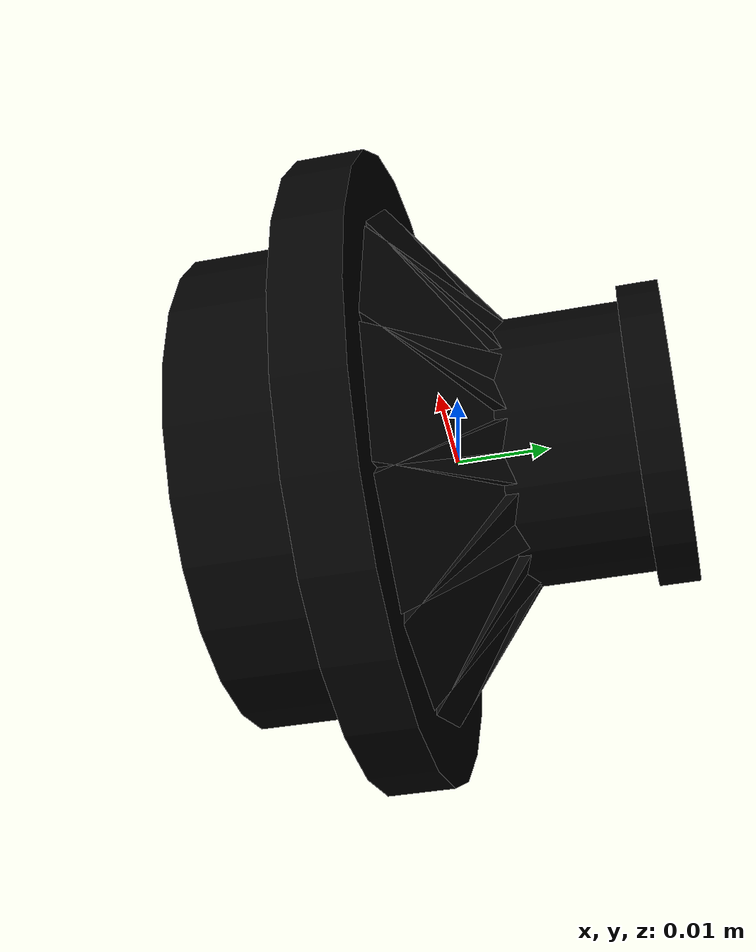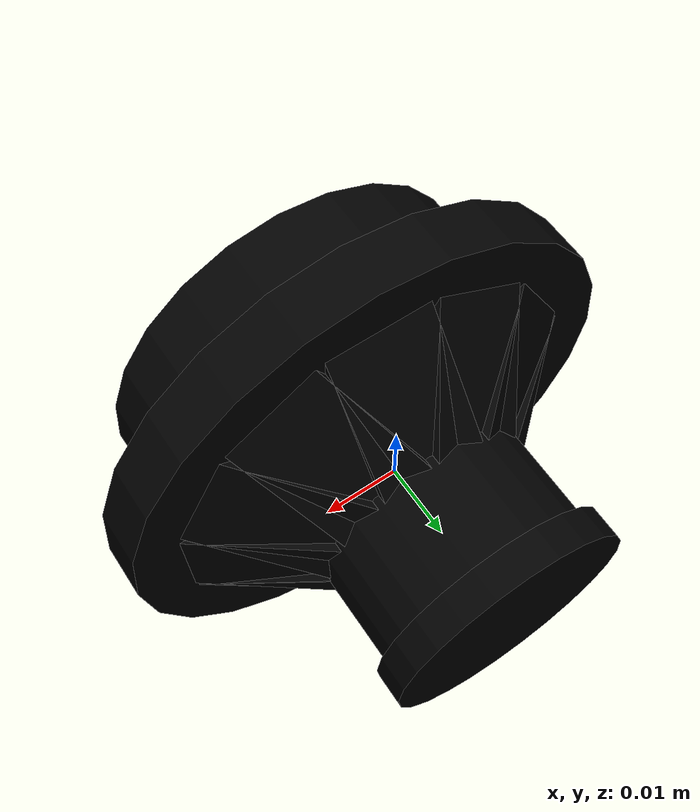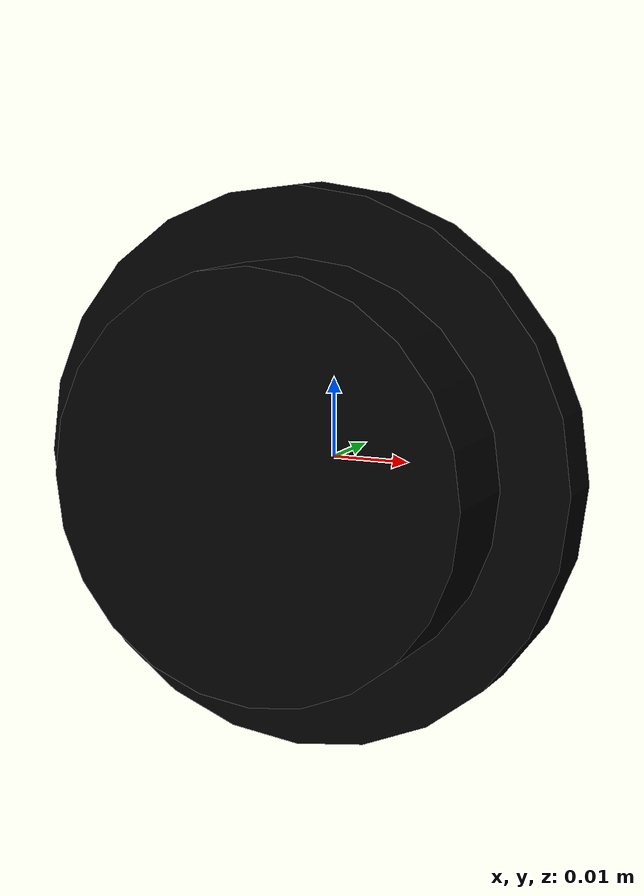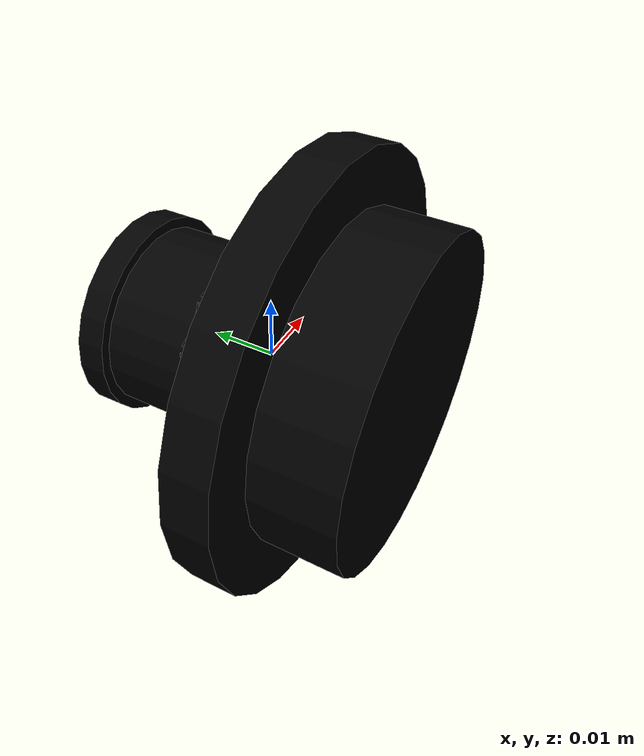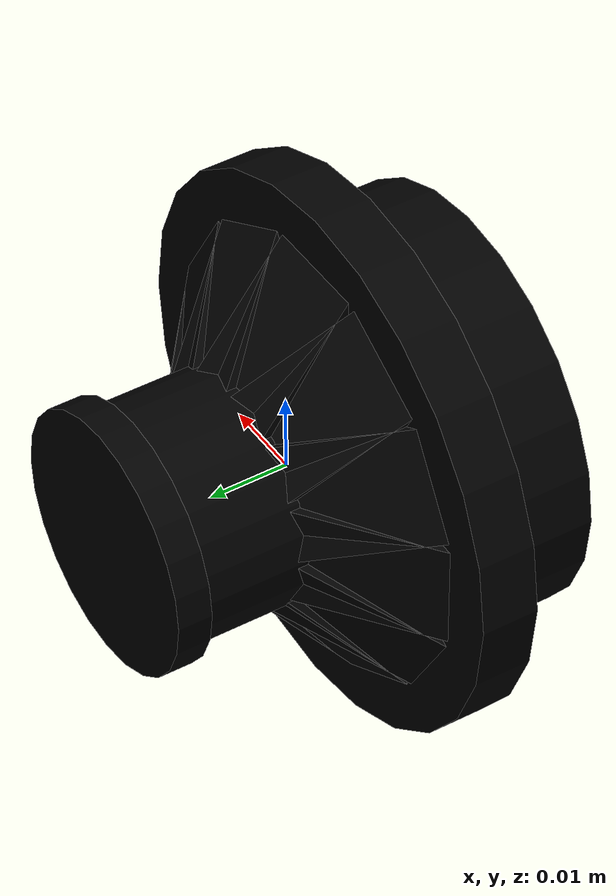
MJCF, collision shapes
<?xml version="1.0" ?>
<mujoco model="model">
    <compiler angle="radian"/>
    <asset>
        <mesh file="visuals/CabinetHandle035.obj" name="mesh"/>
        <texture file="visuals/T_BC001.png" name="tex" type="2d"/>
        <material name="mat" rgba="1 1 1 1.0" texture="tex" shininess="0.05" specular="1"/>
    </asset>
    <default>
        <default class="visual">
            <geom conaffinity="0" contype="0" group="1" type="mesh"/>
        </default>
        <default class="collision">
            <geom group="0" rgba="0 0 0 0"/>
        </default>
        <default class="spawn">
            <geom group="0" rgba="0 0 0 0" contype="0" conaffinity="0"/>
            <site group="0" rgba="0 0 0 0"/>
        </default>
    </default>
    <worldbody>
        <body>
            <body name="object">
                <geom mesh="mesh" type="mesh" solimp="0.998 0.998 0.001" solref="0.001 1" density="100" friction="0.95 0.3 0.1" class="visual" material="mat"/>
                <geom class="collision" type="cylinder" pos="0.0 -0.007462132256478071 5.633752908629219e-10" size="0.03455479070544243 0.003561858320608735" quat="0.7071068286895752 0.7071067690849304 0.0 0.0"/>
                <geom class="collision" type="cylinder" pos="0.0 0.021816875785589218 -1.6471284336461167e-09" size="0.016213493421673775 0.002159304916858673" quat="0.7071068286895752 0.7071067690849304 0.0 0.0" name="handle_connector"/>
                <geom class="collision" type="cylinder" pos="0.0 -0.017525188624858856 1.323114950935178e-09" size="0.02604939602315426 0.0065163904801011086" quat="0.7071068286895752 0.7071067690849304 0.0 0.0"/>
                <geom class="collision" type="cylinder" pos="0.0 0.012328596785664558 -9.307831172478132e-10" size="0.01458699069917202 0.007982098497450352" quat="0.7071068286895752 0.7071067690849304 0.0 0.0"/>
                <geom class="collision" type="box" pos="0.0 0.00020826468244194984 0.018328353762626648" size="0.006832967046648264 0.010165456682443619 0.002418133895844221" quat="0.8962873816490173 -0.4434736669063568 -0.0 0.0"/>
                <geom class="collision" type="box" pos="-2.7675044478314703e-09 0.00020826468244194984 -0.018328353762626648" size="0.006832967046648264 0.010165456682443619 0.002418133895844221" quat="6.766781268652267e-08 -3.348133503777717e-08 -0.8962873816490173 -0.4434736967086792"/>
                <geom class="collision" type="box" pos="0.018328353762626648 0.00020826468244194984 8.958203068232251e-09" size="0.006832967046648264 0.010165456682443619 0.002418133895844221" quat="0.6337710618972778 -0.3135833144187927 0.633770763874054 0.3135831654071808"/>
                <geom class="collision" type="box" pos="-0.018328353762626648 0.00020826468244194984 1.3837522239157352e-09" size="0.006832967046648264 0.010165456682443619 0.002418133895844221" quat="0.6337709426879883 -0.31358325481414795 -0.6337708830833435 -0.31358322501182556"/>
                <geom class="collision" type="box" pos="-0.01587281934916973 0.00020826654508709908 0.009164177812635899" size="0.006832967046648264 0.010165457613766193 0.002418133895844221" quat="0.776207685470581 -0.38405951857566833 -0.4481436610221863 -0.2217368483543396"/>
                <geom class="collision" type="box" pos="0.01587282493710518 0.00020826654508709908 -0.009164167568087578" size="0.006832967046648264 0.010165456682443619 0.002418133895844221" quat="0.44814395904541016 -0.22173696756362915 0.7762075066566467 0.38405942916870117"/>
                <geom class="collision" type="box" pos="0.00916418805718422 0.00020826654508709908 -0.015872813761234283" size="0.006832967046648264 0.010165456682443619 0.002418133895844221" quat="0.2319764792919159 -0.1147795245051384 0.8657470941543579 0.42836257815361023"/>
                <geom class="collision" type="box" pos="-0.009164176881313324 0.00020826654508709908 0.01587281934916973" size="0.006832967046648264 0.010165456682443619 0.002418133895844221" quat="0.8657471537590027 -0.4283626973628998 -0.2319762259721756 -0.11477942764759064"/>
                <geom class="collision" type="box" pos="0.009164177812635899 0.00020826654508709908 0.01587281934916973" size="0.006832967046648264 0.010165456682443619 0.002418133895844221" quat="0.8657470941543579 -0.42836275696754456 0.23197630047798157 0.11477947980165482"/>
                <geom class="collision" type="box" pos="-0.009164165705442429 0.00020826654508709908 -0.01587282493710518" size="0.006832967046648264 0.010165456682443619 0.002418133895844221" quat="0.2319759577512741 -0.11477930098772049 -0.8657472133636475 -0.42836275696754456"/>
                <geom class="collision" type="box" pos="-0.015872813761234283 0.00020826654508709908 -0.009164188988506794" size="0.006832967046648264 0.010165456682443619 0.002418133895844221" quat="0.4481433629989624 -0.22173655033111572 -0.7762079834938049 -0.38405942916870117"/>
                <geom class="collision" type="box" pos="0.01587282121181488 0.00020826654508709908 0.009164175018668175" size="0.006832967046648264 0.010165456682443619 0.002418133895844221" quat="0.7762076258659363 -0.38405951857566833 0.44814375042915344 0.22173690795898438"/>
            </body>
        </body>
    </worldbody>
    <actuator/>
</mujoco>
